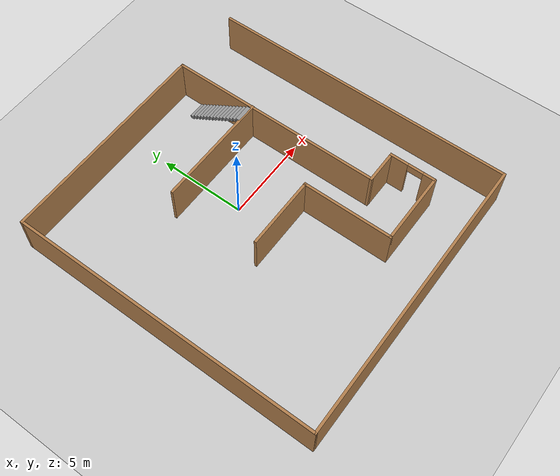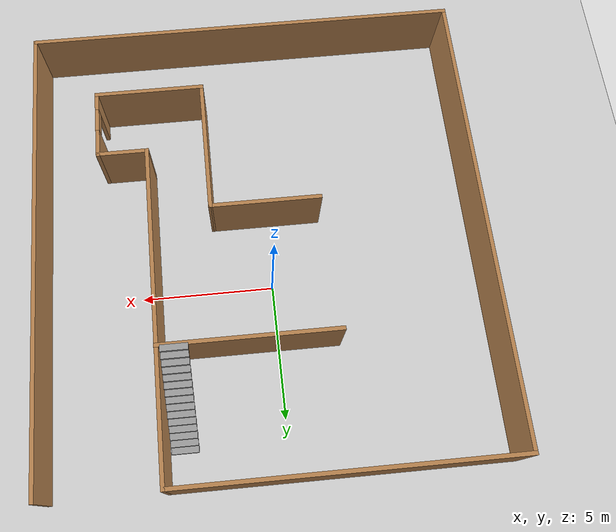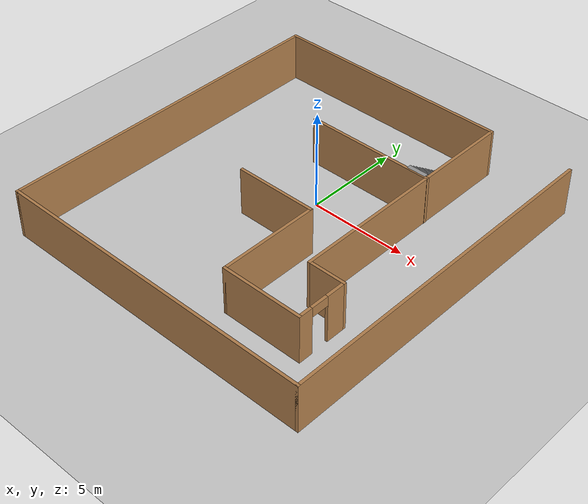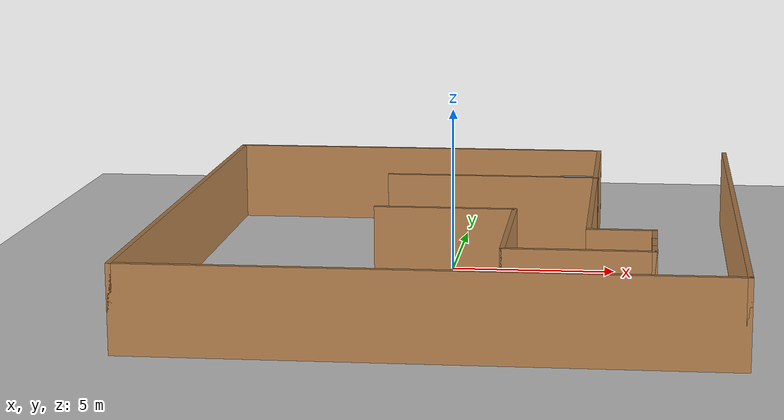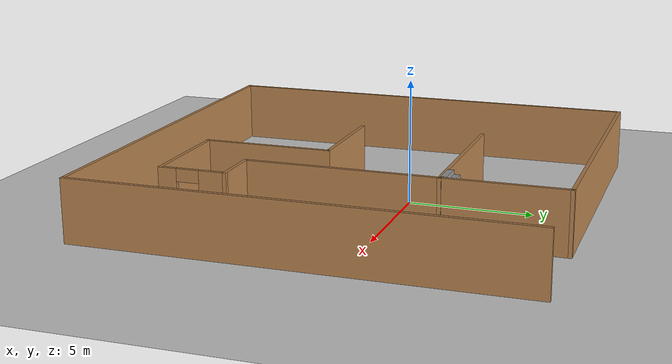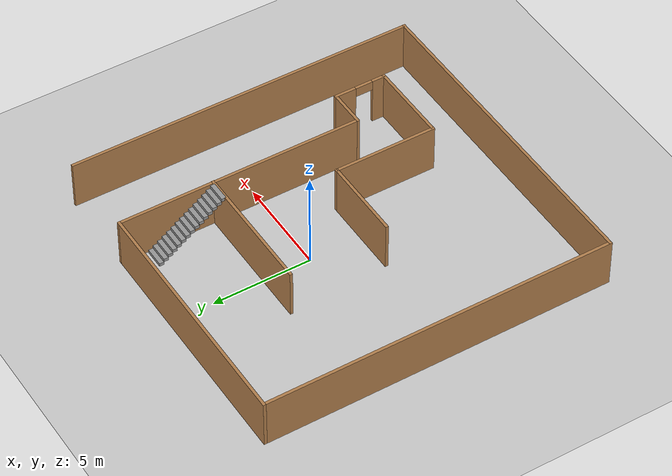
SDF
<sdf version="1.7">
  <world name="default">
    <include>
      <uri>model://ground_plane</uri>
    </include>
    <include>
      <uri>model://sun</uri>
    </include>
    <model name="house_test">
      <static>true</static>
      <pose>0 0 0 0 0 0</pose>
      <include>
        <uri>model://house_test</uri>
      </include>
    </model>
  </world>
</sdf>

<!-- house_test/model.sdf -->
<sdf version='1.7'>
  <model name='house_test'>
    <pose>0.28 -1.63 0 0 -0 0</pose>
    <link name='Stairs_1'>
      <visual name='Stairs_1_Visual_0'>
        <pose>3.43378 7.40333 0.083333 0 -0 0</pose>
        <geometry>
          <box>
            <size>1 0.233333 0.166667</size>
          </box>
        </geometry>
        <material>
          <script>
            <uri>file://media/materials/scripts/gazebo.material</uri>
            <name>Gazebo/Grey</name>
          </script>
          <ambient>1 1 1 1</ambient>
        </material>
        <meta>
          <layer>0</layer>
        </meta>
      </visual>
      <collision name='Stairs_1_Collision_0'>
        <geometry>
          <box>
            <size>1 0.233333 0.166667</size>
          </box>
        </geometry>
        <pose>3.43378 7.40333 0.083333 0 -0 0</pose>
      </collision>
      <visual name='Stairs_1_Visual_1'>
        <pose>3.43378 7.17 0.25 0 -0 0</pose>
        <geometry>
          <box>
            <size>1 0.233333 0.166667</size>
          </box>
        </geometry>
        <material>
          <script>
            <uri>file://media/materials/scripts/gazebo.material</uri>
            <name>Gazebo/Grey</name>
          </script>
          <ambient>1 1 1 1</ambient>
        </material>
        <meta>
          <layer>0</layer>
        </meta>
      </visual>
      <collision name='Stairs_1_Collision_1'>
        <geometry>
          <box>
            <size>1 0.233333 0.166667</size>
          </box>
        </geometry>
        <pose>3.43378 7.17 0.25 0 -0 0</pose>
      </collision>
      <visual name='Stairs_1_Visual_2'>
        <pose>3.43378 6.93667 0.416667 0 -0 0</pose>
        <geometry>
          <box>
            <size>1 0.233333 0.166667</size>
          </box>
        </geometry>
        <material>
          <script>
            <uri>file://media/materials/scripts/gazebo.material</uri>
            <name>Gazebo/Grey</name>
          </script>
          <ambient>1 1 1 1</ambient>
        </material>
        <meta>
          <layer>0</layer>
        </meta>
      </visual>
      <collision name='Stairs_1_Collision_2'>
        <geometry>
          <box>
            <size>1 0.233333 0.166667</size>
          </box>
        </geometry>
        <pose>3.43378 6.93667 0.416667 0 -0 0</pose>
      </collision>
      <visual name='Stairs_1_Visual_3'>
        <pose>3.43378 6.70333 0.583333 0 -0 0</pose>
        <geometry>
          <box>
            <size>1 0.233333 0.166667</size>
          </box>
        </geometry>
        <material>
          <script>
            <uri>file://media/materials/scripts/gazebo.material</uri>
            <name>Gazebo/Grey</name>
          </script>
          <ambient>1 1 1 1</ambient>
        </material>
        <meta>
          <layer>0</layer>
        </meta>
      </visual>
      <collision name='Stairs_1_Collision_3'>
        <geometry>
          <box>
            <size>1 0.233333 0.166667</size>
          </box>
        </geometry>
        <pose>3.43378 6.70333 0.583333 0 -0 0</pose>
      </collision>
      <visual name='Stairs_1_Visual_4'>
        <pose>3.43378 6.47 0.75 0 -0 0</pose>
        <geometry>
          <box>
            <size>1 0.233333 0.166667</size>
          </box>
        </geometry>
        <material>
          <script>
            <uri>file://media/materials/scripts/gazebo.material</uri>
            <name>Gazebo/Grey</name>
          </script>
          <ambient>1 1 1 1</ambient>
        </material>
        <meta>
          <layer>0</layer>
        </meta>
      </visual>
      <collision name='Stairs_1_Collision_4'>
        <geometry>
          <box>
            <size>1 0.233333 0.166667</size>
          </box>
        </geometry>
        <pose>3.43378 6.47 0.75 0 -0 0</pose>
      </collision>
      <visual name='Stairs_1_Visual_5'>
        <pose>3.43378 6.23667 0.916667 0 -0 0</pose>
        <geometry>
          <box>
            <size>1 0.233333 0.166667</size>
          </box>
        </geometry>
        <material>
          <script>
            <uri>file://media/materials/scripts/gazebo.material</uri>
            <name>Gazebo/Grey</name>
          </script>
          <ambient>1 1 1 1</ambient>
        </material>
        <meta>
          <layer>0</layer>
        </meta>
      </visual>
      <collision name='Stairs_1_Collision_5'>
        <geometry>
          <box>
            <size>1 0.233333 0.166667</size>
          </box>
        </geometry>
        <pose>3.43378 6.23667 0.916667 0 -0 0</pose>
      </collision>
      <visual name='Stairs_1_Visual_6'>
        <pose>3.43378 6.00333 1.08333 0 -0 0</pose>
        <geometry>
          <box>
            <size>1 0.233333 0.166667</size>
          </box>
        </geometry>
        <material>
          <script>
            <uri>file://media/materials/scripts/gazebo.material</uri>
            <name>Gazebo/Grey</name>
          </script>
          <ambient>1 1 1 1</ambient>
        </material>
        <meta>
          <layer>0</layer>
        </meta>
      </visual>
      <collision name='Stairs_1_Collision_6'>
        <geometry>
          <box>
            <size>1 0.233333 0.166667</size>
          </box>
        </geometry>
        <pose>3.43378 6.00333 1.08333 0 -0 0</pose>
      </collision>
      <visual name='Stairs_1_Visual_7'>
        <pose>3.43378 5.77 1.25 0 -0 0</pose>
        <geometry>
          <box>
            <size>1 0.233333 0.166667</size>
          </box>
        </geometry>
        <material>
          <script>
            <uri>file://media/materials/scripts/gazebo.material</uri>
            <name>Gazebo/Grey</name>
          </script>
          <ambient>1 1 1 1</ambient>
        </material>
        <meta>
          <layer>0</layer>
        </meta>
      </visual>
      <collision name='Stairs_1_Collision_7'>
        <geometry>
          <box>
            <size>1 0.233333 0.166667</size>
          </box>
        </geometry>
        <pose>3.43378 5.77 1.25 0 -0 0</pose>
      </collision>
      <visual name='Stairs_1_Visual_8'>
        <pose>3.43378 5.53667 1.41667 0 -0 0</pose>
        <geometry>
          <box>
            <size>1 0.233333 0.166667</size>
          </box>
        </geometry>
        <material>
          <script>
            <uri>file://media/materials/scripts/gazebo.material</uri>
            <name>Gazebo/Grey</name>
          </script>
          <ambient>1 1 1 1</ambient>
        </material>
        <meta>
          <layer>0</layer>
        </meta>
      </visual>
      <collision name='Stairs_1_Collision_8'>
        <geometry>
          <box>
            <size>1 0.233333 0.166667</size>
          </box>
        </geometry>
        <pose>3.43378 5.53667 1.41667 0 -0 0</pose>
      </collision>
      <visual name='Stairs_1_Visual_9'>
        <pose>3.43378 5.30333 1.58333 0 -0 0</pose>
        <geometry>
          <box>
            <size>1 0.233333 0.166667</size>
          </box>
        </geometry>
        <material>
          <script>
            <uri>file://media/materials/scripts/gazebo.material</uri>
            <name>Gazebo/Grey</name>
          </script>
          <ambient>1 1 1 1</ambient>
        </material>
        <meta>
          <layer>0</layer>
        </meta>
      </visual>
      <collision name='Stairs_1_Collision_9'>
        <geometry>
          <box>
            <size>1 0.233333 0.166667</size>
          </box>
        </geometry>
        <pose>3.43378 5.30333 1.58333 0 -0 0</pose>
      </collision>
      <visual name='Stairs_1_Visual_10'>
        <pose>3.43378 5.07 1.75 0 -0 0</pose>
        <geometry>
          <box>
            <size>1 0.233333 0.166667</size>
          </box>
        </geometry>
        <material>
          <script>
            <uri>file://media/materials/scripts/gazebo.material</uri>
            <name>Gazebo/Grey</name>
          </script>
          <ambient>1 1 1 1</ambient>
        </material>
        <meta>
          <layer>0</layer>
        </meta>
      </visual>
      <collision name='Stairs_1_Collision_10'>
        <geometry>
          <box>
            <size>1 0.233333 0.166667</size>
          </box>
        </geometry>
        <pose>3.43378 5.07 1.75 0 -0 0</pose>
      </collision>
      <visual name='Stairs_1_Visual_11'>
        <pose>3.43378 4.83667 1.91667 0 -0 0</pose>
        <geometry>
          <box>
            <size>1 0.233333 0.166667</size>
          </box>
        </geometry>
        <material>
          <script>
            <uri>file://media/materials/scripts/gazebo.material</uri>
            <name>Gazebo/Grey</name>
          </script>
          <ambient>1 1 1 1</ambient>
        </material>
        <meta>
          <layer>0</layer>
        </meta>
      </visual>
      <collision name='Stairs_1_Collision_11'>
        <geometry>
          <box>
            <size>1 0.233333 0.166667</size>
          </box>
        </geometry>
        <pose>3.43378 4.83667 1.91667 0 -0 0</pose>
      </collision>
      <visual name='Stairs_1_Visual_12'>
        <pose>3.43378 4.60333 2.08333 0 -0 0</pose>
        <geometry>
          <box>
            <size>1 0.233333 0.166667</size>
          </box>
        </geometry>
        <material>
          <script>
            <uri>file://media/materials/scripts/gazebo.material</uri>
            <name>Gazebo/Grey</name>
          </script>
          <ambient>1 1 1 1</ambient>
        </material>
        <meta>
          <layer>0</layer>
        </meta>
      </visual>
      <collision name='Stairs_1_Collision_12'>
        <geometry>
          <box>
            <size>1 0.233333 0.166667</size>
          </box>
        </geometry>
        <pose>3.43378 4.60333 2.08333 0 -0 0</pose>
      </collision>
      <visual name='Stairs_1_Visual_13'>
        <pose>3.43378 4.37 2.25 0 -0 0</pose>
        <geometry>
          <box>
            <size>1 0.233333 0.166667</size>
          </box>
        </geometry>
        <material>
          <script>
            <uri>file://media/materials/scripts/gazebo.material</uri>
            <name>Gazebo/Grey</name>
          </script>
          <ambient>1 1 1 1</ambient>
        </material>
        <meta>
          <layer>0</layer>
        </meta>
      </visual>
      <collision name='Stairs_1_Collision_13'>
        <geometry>
          <box>
            <size>1 0.233333 0.166667</size>
          </box>
        </geometry>
        <pose>3.43378 4.37 2.25 0 -0 0</pose>
      </collision>
      <visual name='Stairs_1_Visual_14'>
        <pose>3.43378 4.13667 2.41667 0 -0 0</pose>
        <geometry>
          <box>
            <size>1 0.233333 0.166667</size>
          </box>
        </geometry>
        <material>
          <script>
            <uri>file://media/materials/scripts/gazebo.material</uri>
            <name>Gazebo/Grey</name>
          </script>
          <ambient>1 1 1 1</ambient>
        </material>
        <meta>
          <layer>0</layer>
        </meta>
      </visual>
      <collision name='Stairs_1_Collision_14'>
        <geometry>
          <box>
            <size>1 0.233333 0.166667</size>
          </box>
        </geometry>
        <pose>3.43378 4.13667 2.41667 0 -0 0</pose>
      </collision>
    </link>
    <link name='Wall_0'>
      <collision name='Wall_0_Collision'>
        <geometry>
          <box>
            <size>4.25 0.15 2.5</size>
          </box>
        </geometry>
        <pose>0 0 1.25 0 -0 0</pose>
      </collision>
      <visual name='Wall_0_Visual'>
        <pose>0 0 1.25 0 -0 0</pose>
        <geometry>
          <box>
            <size>4.25 0.15 2.5</size>
          </box>
        </geometry>
        <material>
          <script>
            <uri>file://media/materials/scripts/gazebo.material</uri>
            <name>Gazebo/Wood</name>
          </script>
          <ambient>1 1 1 1</ambient>
        </material>
        <meta>
          <layer>0</layer>
        </meta>
      </visual>
      <pose>-0.25 -1.05 0 0 -0 0</pose>
    </link>
    <link name='Wall_1'>
      <collision name='Wall_1_Collision'>
        <geometry>
          <box>
            <size>5.25 0.15 2.5</size>
          </box>
        </geometry>
        <pose>0 0 1.25 0 -0 0</pose>
      </collision>
      <visual name='Wall_1_Visual'>
        <pose>0 0 1.25 0 -0 0</pose>
        <geometry>
          <box>
            <size>5.25 0.15 2.5</size>
          </box>
        </geometry>
        <material>
          <script>
            <uri>file://media/materials/scripts/gazebo.material</uri>
            <name>Gazebo/Wood</name>
          </script>
          <ambient>1 1 1 1</ambient>
        </material>
        <meta>
          <layer>0</layer>
        </meta>
      </visual>
      <pose>1.8 -3.6 0 0 -0 -1.5708</pose>
    </link>
    <link name='Wall_11'>
      <collision name='Wall_11_Collision'>
        <geometry>
          <box>
            <size>6.75 0.15 2.5</size>
          </box>
        </geometry>
        <pose>0 0 1.25 0 -0 0</pose>
      </collision>
      <visual name='Wall_11_Visual'>
        <pose>0 0 1.25 0 -0 0</pose>
        <geometry>
          <box>
            <size>6.75 0.15 2.5</size>
          </box>
        </geometry>
        <material>
          <script>
            <uri>file://media/materials/scripts/gazebo.material</uri>
            <name>Gazebo/Wood</name>
          </script>
          <ambient>1 1 1 1</ambient>
        </material>
        <meta>
          <layer>0</layer>
        </meta>
      </visual>
      <pose>0.766998 4.01106 0 0 -0 3.14159</pose>
    </link>
    <link name='Wall_2'>
      <collision name='Wall_2_Collision'>
        <geometry>
          <box>
            <size>4.25 0.15 2.5</size>
          </box>
        </geometry>
        <pose>0 0 1.25 0 -0 0</pose>
      </collision>
      <visual name='Wall_2_Visual'>
        <pose>0 0 1.25 0 -0 0</pose>
        <geometry>
          <box>
            <size>4.25 0.15 2.5</size>
          </box>
        </geometry>
        <material>
          <script>
            <uri>file://media/materials/scripts/gazebo.material</uri>
            <name>Gazebo/Wood</name>
          </script>
          <ambient>1 1 1 1</ambient>
        </material>
        <meta>
          <layer>0</layer>
        </meta>
      </visual>
      <pose>3.85 -6.15 0 0 -0 0</pose>
    </link>
    <link name='Wall_3'>
      <pose>5.9 -4.85 0 0 -0 1.5708</pose>
      <visual name='Wall_3_Visual_0'>
        <pose>-1.00244 0 1.25 0 -0 0</pose>
        <geometry>
          <box>
            <size>0.74512 0.15 2.5</size>
          </box>
        </geometry>
        <material>
          <script>
            <uri>file://media/materials/scripts/gazebo.material</uri>
            <name>Gazebo/Wood</name>
          </script>
          <ambient>1 1 1 1</ambient>
        </material>
        <meta>
          <layer>0</layer>
        </meta>
      </visual>
      <collision name='Wall_3_Collision_0'>
        <geometry>
          <box>
            <size>0.74512 0.15 2.5</size>
          </box>
        </geometry>
        <pose>-1.00244 0 1.25 0 -0 0</pose>
      </collision>
      <visual name='Wall_3_Visual_1'>
        <pose>0.82256 0 1.25 0 -0 0</pose>
        <geometry>
          <box>
            <size>1.10488 0.15 2.5</size>
          </box>
        </geometry>
        <material>
          <script>
            <uri>file://media/materials/scripts/gazebo.material</uri>
            <name>Gazebo/Wood</name>
          </script>
          <ambient>1 1 1 1</ambient>
        </material>
        <meta>
          <layer>0</layer>
        </meta>
      </visual>
      <collision name='Wall_3_Collision_1'>
        <geometry>
          <box>
            <size>1.10488 0.15 2.5</size>
          </box>
        </geometry>
        <pose>0.82256 0 1.25 0 -0 0</pose>
      </collision>
      <visual name='Wall_3_Visual_2'>
        <pose>-0.17988 0 2.25 0 -0 0</pose>
        <geometry>
          <box>
            <size>0.9 0.15 0.5</size>
          </box>
        </geometry>
        <material>
          <script>
            <uri>file://media/materials/scripts/gazebo.material</uri>
            <name>Gazebo/Wood</name>
          </script>
          <ambient>1 1 1 1</ambient>
        </material>
        <meta>
          <layer>0</layer>
        </meta>
      </visual>
      <collision name='Wall_3_Collision_2'>
        <geometry>
          <box>
            <size>0.9 0.15 0.5</size>
          </box>
        </geometry>
        <pose>-0.17988 0 2.25 0 -0 0</pose>
      </collision>
    </link>
    <link name='Wall_4'>
      <collision name='Wall_4_Collision'>
        <geometry>
          <box>
            <size>2 0.15 2.5</size>
          </box>
        </geometry>
        <pose>0 0 1.25 0 -0 0</pose>
      </collision>
      <visual name='Wall_4_Visual'>
        <pose>0 0 1.25 0 -0 0</pose>
        <geometry>
          <box>
            <size>2 0.15 2.5</size>
          </box>
        </geometry>
        <material>
          <script>
            <uri>file://media/materials/scripts/gazebo.material</uri>
            <name>Gazebo/Wood</name>
          </script>
          <ambient>1 1 1 1</ambient>
        </material>
        <meta>
          <layer>0</layer>
        </meta>
      </visual>
      <pose>4.975 -3.55 0 0 -0 3.14159</pose>
    </link>
    <link name='Wall_5'>
      <collision name='Wall_5_Collision'>
        <geometry>
          <box>
            <size>12.5 0.15 2.5</size>
          </box>
        </geometry>
        <pose>0 0 1.25 0 -0 0</pose>
      </collision>
      <visual name='Wall_5_Visual'>
        <pose>0 0 1.25 0 -0 0</pose>
        <geometry>
          <box>
            <size>12.5 0.15 2.5</size>
          </box>
        </geometry>
        <material>
          <script>
            <uri>file://media/materials/scripts/gazebo.material</uri>
            <name>Gazebo/Wood</name>
          </script>
          <ambient>1 1 1 1</ambient>
        </material>
        <meta>
          <layer>0</layer>
        </meta>
      </visual>
      <pose>4.05 2.625 0 0 -0 1.5708</pose>
    </link>
    <link name='Wall_6'>
      <collision name='Wall_6_Collision'>
        <geometry>
          <box>
            <size>12.5 0.15 2.5</size>
          </box>
        </geometry>
        <pose>0 0 1.25 0 -0 0</pose>
      </collision>
      <visual name='Wall_6_Visual'>
        <pose>0 0 1.25 0 -0 0</pose>
        <geometry>
          <box>
            <size>12.5 0.15 2.5</size>
          </box>
        </geometry>
        <material>
          <script>
            <uri>file://media/materials/scripts/gazebo.material</uri>
            <name>Gazebo/Wood</name>
          </script>
          <ambient>1 1 1 1</ambient>
        </material>
        <meta>
          <layer>0</layer>
        </meta>
      </visual>
      <pose>-2.125 8.8 0 0 -0 3.14159</pose>
    </link>
    <link name='Wall_7'>
      <collision name='Wall_7_Collision'>
        <geometry>
          <box>
            <size>17.75 0.15 2.5</size>
          </box>
        </geometry>
        <pose>0 0 1.25 0 -0 0</pose>
      </collision>
      <visual name='Wall_7_Visual'>
        <pose>0 0 1.25 0 -0 0</pose>
        <geometry>
          <box>
            <size>17.75 0.15 2.5</size>
          </box>
        </geometry>
        <material>
          <script>
            <uri>file://media/materials/scripts/gazebo.material</uri>
            <name>Gazebo/Wood</name>
          </script>
          <ambient>1 1 1 1</ambient>
        </material>
        <meta>
          <layer>0</layer>
        </meta>
      </visual>
      <pose>-8.3 0 0 0 -0 -1.5708</pose>
    </link>
    <link name='Wall_8'>
      <collision name='Wall_8_Collision'>
        <geometry>
          <box>
            <size>16.75 0.15 2.5</size>
          </box>
        </geometry>
        <pose>0 0 1.25 0 -0 0</pose>
      </collision>
      <visual name='Wall_8_Visual'>
        <pose>0 0 1.25 0 -0 0</pose>
        <geometry>
          <box>
            <size>16.75 0.15 2.5</size>
          </box>
        </geometry>
        <material>
          <script>
            <uri>file://media/materials/scripts/gazebo.material</uri>
            <name>Gazebo/Wood</name>
          </script>
          <ambient>1 1 1 1</ambient>
        </material>
        <meta>
          <layer>0</layer>
        </meta>
      </visual>
      <pose>0 -8.8 0 0 -0 0</pose>
    </link>
    <link name='Wall_9'>
      <collision name='Wall_9_Collision'>
        <geometry>
          <box>
            <size>17.75 0.15 2.5</size>
          </box>
        </geometry>
        <pose>0 0 1.25 0 -0 0</pose>
      </collision>
      <visual name='Wall_9_Visual'>
        <pose>0 0 1.25 0 -0 0</pose>
        <geometry>
          <box>
            <size>17.75 0.15 2.5</size>
          </box>
        </geometry>
        <material>
          <script>
            <uri>file://media/materials/scripts/gazebo.material</uri>
            <name>Gazebo/Wood</name>
          </script>
          <ambient>1 1 1 1</ambient>
        </material>
        <meta>
          <layer>0</layer>
        </meta>
      </visual>
      <pose>8.3 0 0 0 -0 1.5708</pose>
    </link>
    <static>1</static>
  </model>
</sdf>
